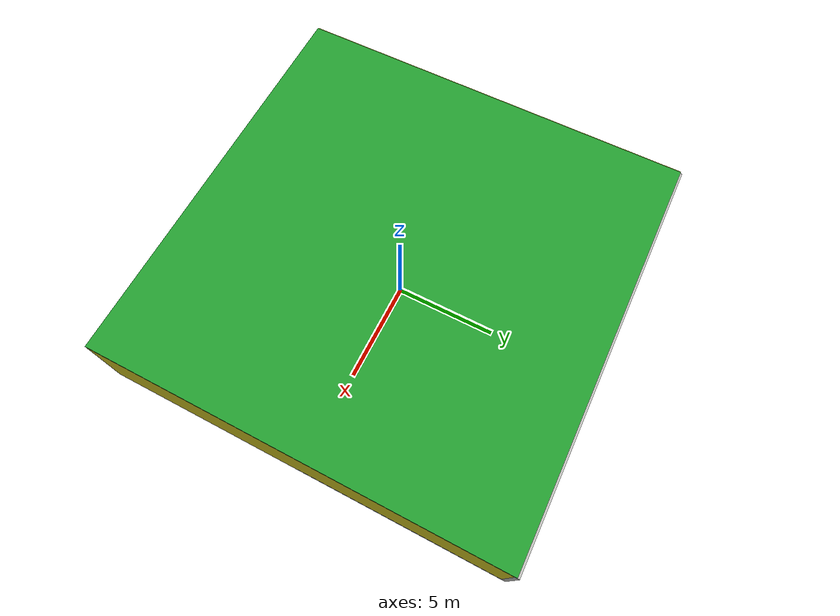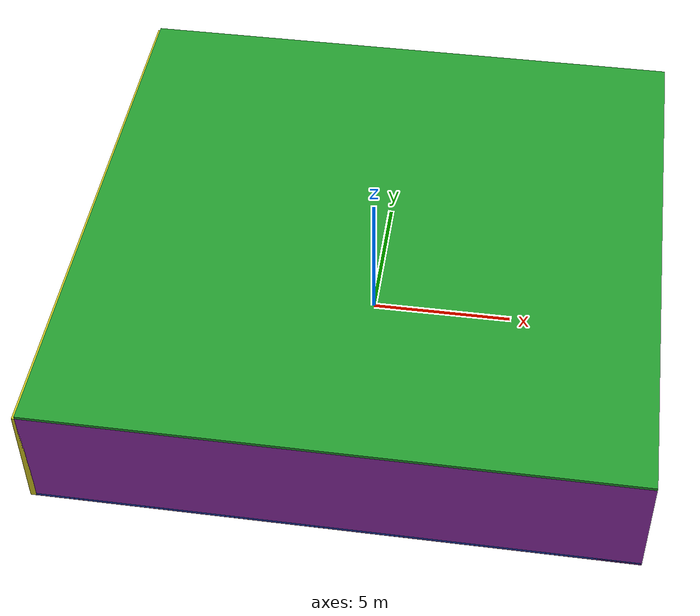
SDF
<sdf version="1.4">
 <world name="default">
  <physics type="ode">
   <max_step_size>0.001</max_step_size>
   <real_time_factor>1</real_time_factor>
   <real_time_update_rate>1000</real_time_update_rate>
   <gravity>0 0 -9.8</gravity>
  </physics>
  <scene><ambient>0.4 0.4 0.4 1</ambient><background>0.7 0.7 0.7 1</background><shadows>1</shadows></scene>
  <model name="Surrounding">
   <static>1</static>
   <link name="Ceiling">
    <collision name="Ceiling_Collision"><geometry><box><size>20 20 0.1</size></box></geometry></collision>
    <visual name="Ceiling_Visual">
     <geometry><box><size>20 20 0.1</size></box></geometry>
     <material>
      <script><uri>file://media/materials/scripts/gazebo.material</uri><name>Gazebo/GreenGlow</name></script>
     </material>
    </visual>
    <pose>0 0 4.05 0 0 0</pose>
   </link>
   <link name="Wall_South">
    <collision name="Wall_South_Collision">
     <geometry><box><size>20 0 4</size></box></geometry>
     <pose>0 0 2 0 -0 0</pose>
    </collision>
    <visual name="Wall_South_Visual">
     <pose>0 0 2 0 -0 0</pose>
     <geometry><box><size>20 0 4</size></box></geometry>
     <material>
      <script><uri>file://media/materials/scripts/gazebo.material</uri><name>Gazebo/Purple</name></script>
     </material>
    </visual>
    <velocity_decay><linear>0</linear><angular>0</angular></velocity_decay>
    <pose>0 -10 0 0 -0 0</pose>
   </link>
   <link name="Wall_East">
    <collision name="Wall_21_Collision">
     <geometry><box><size>20 0 4</size></box></geometry>
     <pose>0 0 2 0 -0 0</pose>
    </collision>
    <visual name="Wall_21_Visual">
     <pose>0 0 2 0 -0 0</pose>
     <geometry><box><size>20 0 4</size></box></geometry>
     <material>
      <script><uri>file://media/materials/scripts/gazebo.material</uri><name>Gazebo/Yellow</name></script>
     </material>
    </visual>
    <velocity_decay><linear>0</linear><angular>0</angular></velocity_decay>
    <pose>10 0 0 0 -0 1.5708</pose>
   </link>
   <link name="Wall_North">
    <collision name="Wall_22_Collision">
     <geometry><box><size>20 0.2 4</size></box></geometry>
     <pose>0 0 2 0 -0 0</pose>
    </collision>
    <visual name="Wall_22_Visual">
     <pose>0 0 2 0 -0 0</pose>
     <geometry><box><size>20 0.2 4</size></box></geometry>
     <material>
      <script><uri>file://media/materials/scripts/gazebo.material</uri><name>Gazebo/CeilingTiled</name></script>
     </material>
    </visual>
    <velocity_decay><linear>0</linear><angular>0</angular></velocity_decay>
    <pose>0 10 0 0 -0 0</pose>
   </link>
   <link name="Wall_West">
    <collision name="Wall_23_Collision">
     <geometry><box><size>20 0.2 4</size></box></geometry>
     <pose>0 0 2 0 -0 0</pose>
    </collision>
    <visual name="Wall_23_Visual">
     <pose>0 0 2 0 -0 0</pose>
     <geometry><box><size>20 0.2 4</size></box></geometry>
     <material>
      <script><uri>file://media/materials/scripts/gazebo.material</uri><name>Gazebo/Yellow</name></script>
     </material>
    </visual>
    <velocity_decay><linear>0</linear><angular>0</angular></velocity_decay>
    <pose>-10 0 0 0 0 -1.5708</pose>
   </link>
   <link name="Ground_link">
    <collision name="collision">
     <pose>0 0 .05 0 -0 0</pose>
     <geometry><box><size>20 20 0.1</size></box></geometry>
    </collision>
    <visual name="visual">
     <pose>0 0 .05 0 -0 0</pose>
     <geometry><box><size>20 20 0.1</size></box></geometry>
     <material>
      <script><uri>file://media/materials/scripts/gazebo.material</uri><name>Gazebo/BlueGlow</name></script>
     </material>
    </visual>
   </link>
   <static>1</static>
  </model>
  <spherical_coordinates>
   <surface_model>EARTH_WGS84</surface_model>
   <latitude_deg>0</latitude_deg>
   <longitude_deg>0</longitude_deg>
   <elevation>0</elevation>
   <heading_deg>0</heading_deg>
  </spherical_coordinates>
  <light name="lightball_0" type="diffuse">
   <diffuse>0.8 0.8 0.8 1</diffuse>
   <specular>0.2 0.2 0.2 1</specular>
   <attenuation>
    <range>100</range>
    <constant>0.7</constant>
    <linear>0.01</linear>
    <quadratic>0.001</quadratic>
   </attenuation>
   <direction>-0.5 0.1 -0.9</direction>
   <pose>-3.78580938033 -4.44032232398 3.1639038785 0 0 0</pose>
  </light>
  <light name="lightball_1" type="diffuse">
   <diffuse>0.8 0.8 0.8 1</diffuse>
   <specular>0.2 0.2 0.2 1</specular>
   <attenuation>
    <range>100</range>
    <constant>0.7</constant>
    <linear>0.01</linear>
    <quadratic>0.001</quadratic>
   </attenuation>
   <direction>-0.5 0.1 -0.9</direction>
   <pose>9.65640967751 9.85752618483 2.5780626047 0 0 0</pose>
  </light>
  <light name="lightball_2" type="diffuse">
   <diffuse>0.8 0.8 0.8 1</diffuse>
   <specular>0.2 0.2 0.2 1</specular>
   <attenuation>
    <range>100</range>
    <constant>0.7</constant>
    <linear>0.01</linear>
    <quadratic>0.001</quadratic>
   </attenuation>
   <direction>-0.5 0.1 -0.9</direction>
   <pose>-8.63991555918 -6.40812210095 3.71831188937 0 0 0</pose>
  </light>
  <light name="lightball_3" type="diffuse">
   <diffuse>0.8 0.8 0.8 1</diffuse>
   <specular>0.2 0.2 0.2 1</specular>
   <attenuation>
    <range>100</range>
    <constant>0.7</constant>
    <linear>0.01</linear>
    <quadratic>0.001</quadratic>
   </attenuation>
   <direction>-0.5 0.1 -0.9</direction>
   <pose>1.34416734255 4.29664888122 0.641140386444 0 0 0</pose>
  </light>
  <include>
   <uri>model://textured_shapes</uri>
   <pose>-6.75778346754 3.3259837936 0 0 0 0.156202358732</pose>
  </include>
  <include>
   <uri>model://construction_cone</uri>
   <pose>-1.426921987 5.05175060459 0 0 0 2.85880238661</pose>
  </include>
  <include>
   <uri>model://textured_shapes</uri>
   <pose>1.42417336089 -3.68722306636 0 0 0 1.94114566817</pose>
  </include>
  <include>
   <uri>model://robocup_3Dsim_goal</uri>
   <pose>1.09166206739 -1.94684776507 0 0 0 0.660616857439</pose>
  </include>
 </world>
</sdf>

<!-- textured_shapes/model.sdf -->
<sdf version="1.6">
  <model name="textured_shapes">
    <pose>0 0 0.5 0 0 0</pose>
    <link name="box">
      <pose>0 -1.5 0 0 0 0</pose>
      <collision name="collision">
        <geometry>
          <box>
            <size>1 1 1</size>
          </box>
        </geometry>
      </collision>
      <visual name="visual">
        <geometry>
          <box>
            <size>1 1 1</size>
          </box>
        </geometry>
        <material>
          <script>
            <uri>model://../model_source/models/textured_shapes/materials/scripts</uri>
            <uri>model://../model_source/models/textured_shapes/materials/textures</uri>
            <name>TexturedShape/Squares</name>
          </script>
        </material>
      </visual>
    </link>
    <link name="sphere">
      <collision name="collision">
        <geometry>
          <sphere>
            <radius>0.5</radius>
          </sphere>
        </geometry>
      </collision>
      <visual name="visual">
        <geometry>
          <sphere>
            <radius>0.5</radius>
          </sphere>
        </geometry>
        <material>
          <script>
            <uri>model://../model_source/models/textured_shapes/materials/scripts</uri>
            <uri>model://../model_source/models/textured_shapes/materials/textures</uri>
            <name>TexturedShape/Squares</name>
          </script>
        </material>
      </visual>
    </link>
    <link name="cylinder">
      <pose>0 1.5 0 0 0 0</pose>
      <collision name="collision">
        <geometry>
          <cylinder>
            <radius>0.5</radius>
            <length>1</length>
          </cylinder>
        </geometry>
      </collision>
      <visual name="visual">
        <geometry>
          <cylinder>
            <radius>0.5</radius>
            <length>1</length>
          </cylinder>
        </geometry>
        <material>
          <script>
            <uri>model://../model_source/models/textured_shapes/materials/scripts</uri>
            <uri>model://../model_source/models/textured_shapes/materials/textures</uri>
            <name>TexturedShape/Squares</name>
          </script>
        </material>
      </visual>
    </link>
  </model>
</sdf>

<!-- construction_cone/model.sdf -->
<sdf version="1.5">
  <model name="Construction Cone">
    <link name="link">
      <collision name="collision">
        <geometry>
          <mesh>
            <scale>10 10 10</scale>
            <uri>file://isr-testbed/construction_cone/meshes/construction_cone.dae</uri>
          </mesh>
        </geometry>
      </collision>
      <visual name="visual">
        <geometry>
          <mesh>
            <scale>10 10 10</scale>
            <uri>file://isr-testbed/construction_cone/meshes/construction_cone.dae</uri>
          </mesh>
        </geometry>
      </visual>
    </link>
  </model>
</sdf>

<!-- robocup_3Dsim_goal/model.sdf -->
<sdf version="1.5">
  <model name="robocup_3d_goal">
    <static>true</static>
    <link name="left_post">
      <pose>0 1.05 0.45 0 0 0</pose>
      <collision name="collision">
        <geometry>
          <cylinder>
            <radius>0.05</radius>
            <length>0.9</length>
          </cylinder>
        </geometry>
      </collision>
      <visual name="visual">
        <geometry>
          <cylinder>
            <radius>0.05</radius>
            <length>0.9</length>
          </cylinder>
        </geometry>
        <material>
          <script>
            <uri>file://media/materials/scripts/gazebo.material</uri>
            <name>Gazebo/ZincYellow</name>
          </script>
        </material>
      </visual>
    </link>
    <link name="left_support_horiz_lower">
      <pose>0.30 1.05 0.01 0 0 0</pose>
      <collision name="collision">
        <geometry>
          <box>
            <size>0.50 0.02 0.02</size>
          </box>
        </geometry>
      </collision>
      <visual name="visual">
        <geometry>
          <box>
            <size>0.50 0.02 0.02</size>
          </box>
        </geometry>
        <material>
          <script>
            <uri>file://media/materials/scripts/gazebo.material</uri>
            <name>Gazebo/White</name>
          </script>
        </material>
      </visual>
    </link>
    <link name="left_support_horiz_upper">
      <pose>0.30 1.05 0.79 0 0 0</pose>
      <collision name="collision">
        <geometry>
          <box>
            <size>0.50 0.02 0.02</size>
          </box>
        </geometry>
      </collision>
      <visual name="visual">
        <geometry>
          <box>
            <size>0.50 0.02 0.02</size>
          </box>
        </geometry>
        <material>
          <script>
            <uri>file://media/materials/scripts/gazebo.material</uri>
            <name>Gazebo/White</name>
          </script>
        </material>
      </visual>
    </link>
    <link name="left_support_vertical">
      <pose>0.56 1.05 0.4 0 1.5708 0</pose>
      <collision name="collision">
        <geometry>
          <box>
            <size>0.80 0.02 0.02</size>
          </box>
        </geometry>
      </collision>
      <visual name="visual">
        <geometry>
          <box>
            <size>0.80 0.02 0.02</size>
          </box>
        </geometry>
        <material>
          <script>
            <uri>file://media/materials/scripts/gazebo.material</uri>
            <name>Gazebo/White</name>
          </script>
        </material>
      </visual>
    </link>
    <link name="right_support_horiz_lower">
      <pose>0.30 -1.05 0.01 0 0 0</pose>
      <collision name="collision">
        <geometry>
          <box>
            <size>0.50 0.02 0.02</size>
          </box>
        </geometry>
      </collision>
      <visual name="visual">
        <geometry>
          <box>
            <size>0.50 0.02 0.02</size>
          </box>
        </geometry>
        <material>
          <script>
            <uri>file://media/materials/scripts/gazebo.material</uri>
            <name>Gazebo/White</name>
          </script>
        </material>
      </visual>
    </link>
    <link name="right_support_horiz_upper">
      <pose>0.30 -1.05 0.79 0 0 0</pose>
      <collision name="collision">
        <geometry>
          <box>
            <size>0.50 0.02 0.02</size>
          </box>
        </geometry>
      </collision>
      <visual name="visual">
        <geometry>
          <box>
            <size>0.50 0.02 0.02</size>
          </box>
        </geometry>
        <material>
          <script>
            <uri>file://media/materials/scripts/gazebo.material</uri>
            <name>Gazebo/White</name>
          </script>
        </material>
      </visual>
    </link>
    <link name="right_support_vertical">
      <pose>0.56 -1.05 0.4 0 1.5708 0</pose>
      <collision name="collision">
        <geometry>
          <box>
            <size>0.80 0.02 0.02</size>
          </box>
        </geometry>
      </collision>
      <visual name="visual">
        <geometry>
          <box>
            <size>0.80 0.02 0.02</size>
          </box>
        </geometry>
        <material>
          <script>
            <uri>file://media/materials/scripts/gazebo.material</uri>
            <name>Gazebo/White</name>
          </script>
        </material>
      </visual>
    </link>
    <link name="center_support_horiz_lower">
      <pose>0.56 0 0.01 0 1.5708 0</pose>
      <collision name="collision">
        <geometry>
          <box>
            <size>0.02 2.08 0.02</size>
          </box>
        </geometry>
      </collision>
      <visual name="visual">
        <geometry>
          <box>
            <size>0.02 2.08 0.02</size>
          </box>
        </geometry>
        <material>
          <script>
            <uri>file://media/materials/scripts/gazebo.material</uri>
            <name>Gazebo/White</name>
          </script>
        </material>
      </visual>
    </link>
    <link name="center_support_horiz_upper">
      <pose>0.56 0 0.79 0 1.5708 0</pose>
      <collision name="collision">
        <geometry>
          <box>
            <size>0.02 2.08 0.02</size>
          </box>
        </geometry>
      </collision>
      <visual name="visual">
        <geometry>
          <box>
            <size>0.02 2.08 0.02</size>
          </box>
        </geometry>
        <material>
          <script>
            <uri>file://media/materials/scripts/gazebo.material</uri>
            <name>Gazebo/White</name>
          </script>
        </material>
      </visual>
    </link>
    <link name="right_post">
      <pose>0 -1.05 0.45 0 0 0</pose>
      <collision name="collision">
        <geometry>
          <cylinder>
            <radius>0.05</radius>
            <length>0.9</length>
          </cylinder>
        </geometry>
      </collision>
      <visual name="visual">
        <geometry>
          <cylinder>
            <radius>0.05</radius>
            <length>0.9</length>
          </cylinder>
        </geometry>
        <material>
          <script>
            <uri>file://media/materials/scripts/gazebo.material</uri>
            <name>Gazebo/ZincYellow</name>
          </script>
        </material>
      </visual>
    </link>
    <link name="crossbar">
      <pose>0 0 0.85 1.57 1.57 0</pose>
      <collision name="collision">
        <geometry>
          <cylinder>
            <radius>0.05</radius>
            <length>2.0</length>
          </cylinder>
        </geometry>
      </collision>
      <visual name="visual">
        <geometry>
          <cylinder>
            <radius>0.05</radius>
            <length>2.0</length>
          </cylinder>
        </geometry>
        <material>
          <script>
            <uri>file://media/materials/scripts/gazebo.material</uri>
            <name>Gazebo/ZincYellow</name>
          </script>
        </material>
      </visual>
    </link>
    <link name="center_net">
      <pose>0.56 0 0.40 0 0 0</pose>
      <collision name="collision">
        <geometry>
          <box>
            <size>0.01 2.1 0.80</size>
          </box>
        </geometry>
      </collision>
      <visual name="visual">
        <geometry>
          <box>
            <size>0.01 2.1 0.80</size>
          </box>
        </geometry>
        <material>
          <script>
            <uri>model://../model_source/models/robocup09_spl_field/materials/scripts/</uri>
            <uri>model://../model_source/models/robocup09_spl_field/materials/textures/</uri>
            <name>RoboCup/Net</name>
          </script>
        </material>
      </visual>
    </link>
    <link name="left_net">
      <pose>0.30 1.05 0.40 0 0 0</pose>
      <collision name="collision">
        <geometry>
          <box>
            <size>0.50 0.01 0.76</size>
          </box>
        </geometry>
      </collision>
      <visual name="visual">
        <geometry>
          <box>
            <size>0.50 0.01 0.76</size>
          </box>
        </geometry>
        <material>
          <script>
            <uri>model://../model_source/models/robocup09_spl_field/materials/scripts/</uri>
            <uri>model://../model_source/models/robocup09_spl_field/materials/textures/</uri>
            <name>RoboCup/Net</name>
          </script>
        </material>
      </visual>
    </link>
    <link name="right_net">
      <pose>0.30 -1.05 0.40 0 0 0</pose>
      <collision name="collision">
        <geometry>
          <box>
            <size>0.50 0.01 0.76</size>
          </box>
        </geometry>
      </collision>
      <visual name="visual">
        <geometry>
          <box>
            <size>0.50 0.01 0.76</size>
          </box>
        </geometry>
        <material>
          <script>
            <uri>model://../model_source/models/robocup09_spl_field/materials/scripts/</uri>
            <uri>model://../model_source/models/robocup09_spl_field/materials/textures/</uri>
            <name>RoboCup/Net</name>
          </script>
        </material>
      </visual>
    </link>
  </model>
</sdf>
